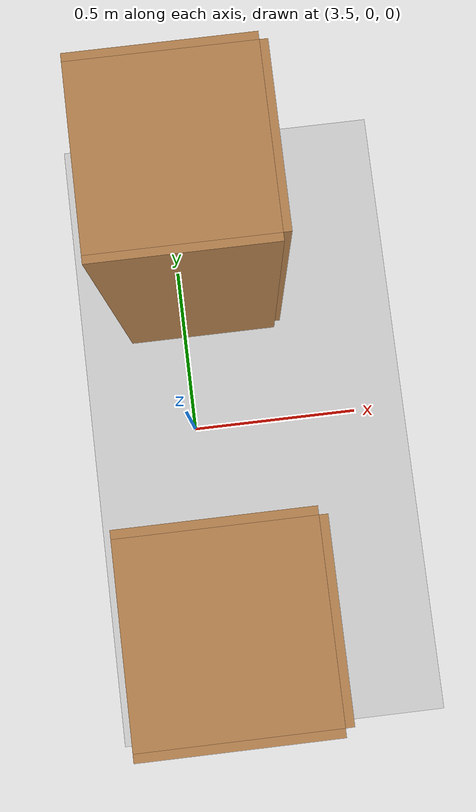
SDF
<?xml version="1.0" ?>
<sdf version="1.4">
  <world name="default">
    <include>
      <uri>model://ground_plane</uri>
    </include>
    <include>
      <uri>model://sun</uri>
    </include>
    <include>
      <uri>model://cabinet</uri>
      <pose>3.55695 0.538432 0 0 0 0</pose>
    </include>
    <include>
      <uri>model://cabinet</uri>
      <pose>3.55695 -0.538432 0 0 0 0</pose>
    </include>

    <!-- Only one ROS interface plugin is required per world, as any other plugin can connect a Gazebo
         topic to a ROS topic (or vise versa). -->
    <plugin name="ros_interface_plugin" filename="librotors_gazebo_ros_interface_plugin.so"/>

    <spherical_coordinates>
      <surface_model>EARTH_WGS84</surface_model>
      <latitude_deg>47.3667</latitude_deg>
      <longitude_deg>8.5500</longitude_deg>
      <elevation>500.0</elevation>
      <heading_deg>0</heading_deg>
    </spherical_coordinates>
    <physics type='ode'>
      <ode>
        <solver>
          <type>quick</type>
          <iters>1000</iters>
          <sor>1.3</sor>
        </solver>
        <constraints>
          <cfm>0</cfm>
          <erp>0.2</erp>
          <contact_max_correcting_vel>100</contact_max_correcting_vel>
          <contact_surface_layer>0.001</contact_surface_layer>
        </constraints>
      </ode>
      <max_step_size>0.01</max_step_size>
      <real_time_factor>1</real_time_factor>
      <real_time_update_rate>100</real_time_update_rate>
      <gravity>0 0 -9.8</gravity>
    </physics>
  </world>
</sdf>

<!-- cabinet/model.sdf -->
<sdf version="1.5">
  <model name="cabinet">
    <static>true</static>
    <link name="cabinet_bottom_plate">
      <inertial>
        <pose>0 0 -1 0 0 0</pose>
        <inertia>
          <ixx>2.050000</ixx>
          <ixy>0</ixy>
          <ixz>0</ixz>
          <iyy>2.050000</iyy>
          <iyz>0</iyz>
          <izz>2.050000</izz>
        </inertia>
        <mass>25.000000</mass>
      </inertial>
      <collision name="cabinet_bottom_plate_geom">
        <pose>0 0 0.010000 0 0 0</pose>
        <geometry>
          <box>
            <size>0.450000 0.450000 0.020000</size>
          </box>
        </geometry>
      </collision>
      <visual name="cabinet_bottom_plate_geom_visual">
        <pose>0 0 0.010000 0 0 0</pose>
        <geometry>
          <box>
            <size>0.450000 0.450000 0.020000</size>
          </box>
        </geometry>
        <material>
          <script>
            <uri>model://media/materials/scripts/gazebo.material</uri>
            <name>Gazebo/Wood</name>
          </script>
        </material>
      </visual>
      <collision name="cabinet_bottom_plate_geom_cabinet_back_plate">
        <pose>0.235000 0 0.510000 0 0 0</pose>
        <geometry>
          <box>
            <size>0.020000 0.450000 1.020000</size>
          </box>
        </geometry>
      </collision>
      <visual name="cabinet_bottom_plate_geom_cabinet_back_plate_visual">
        <pose>0.235000 0 0.510000 0 0 0</pose>
        <geometry>
          <box>
            <size>0.020000 0.450000 1.020000</size>
          </box>
        </geometry>
        <material>
          <script>
            <uri>model://media/materials/scripts/gazebo.material</uri>
            <name>Gazebo/Wood</name>
          </script>
        </material>
      </visual>
      <collision name="cabinet_bottom_plate_geom_cabinet_left_plate">
        <pose>0 0.235000 0.510000 0 0 0</pose>
        <geometry>
          <box>
            <size>0.450000 0.020000 1.020000</size>
          </box>
        </geometry>
      </collision>
      <visual name="cabinet_bottom_plate_geom_cabinet_left_plate_visual">
        <pose>0 0.235000 0.510000 0 0 0</pose>
        <geometry>
          <box>
            <size>0.450000 0.020000 1.020000</size>
          </box>
        </geometry>
        <material>
          <script>
            <uri>model://media/materials/scripts/gazebo.material</uri>
            <name>Gazebo/Wood</name>
          </script>
        </material>
      </visual>
      <collision name="cabinet_bottom_plate_geom_cabinet_middle_plate">
        <pose>0 0 0.510000 0 0 0</pose>
        <geometry>
          <box>
            <size>0.450000 0.450000 0.020000</size>
          </box>
        </geometry>
      </collision>
      <visual name="cabinet_bottom_plate_geom_cabinet_middle_plate_visual">
        <pose>0 0 0.510000 0 0 0</pose>
        <geometry>
          <box>
            <size>0.450000 0.450000 0.020000</size>
          </box>
        </geometry>
        <material>
          <script>
            <uri>model://media/materials/scripts/gazebo.material</uri>
            <name>Gazebo/Wood</name>
          </script>
        </material>
      </visual>
      <collision name="cabinet_bottom_plate_geom_cabinet_right_plate">
        <pose>0 -0.235000 0.510000 0 0 0</pose>
        <geometry>
          <box>
            <size>0.450000 0.020000 1.020000</size>
          </box>
        </geometry>
      </collision>
      <visual name="cabinet_bottom_plate_geom_cabinet_right_plate_visual">
        <pose>0 -0.235000 0.510000 0 0 0</pose>
        <geometry>
          <box>
            <size>0.450000 0.020000 1.020000</size>
          </box>
        </geometry>
        <material>
          <script>
            <uri>model://media/materials/scripts/gazebo.material</uri>
            <name>Gazebo/Wood</name>
          </script>
        </material>
      </visual>
      <collision name="cabinet_bottom_plate_geom_cabinet_top_plate">
        <pose>0 0 1.010000 0 0 0</pose>
        <geometry>
          <box>
            <size>0.450000 0.450000 0.020000</size>
          </box>
        </geometry>
      </collision>
      <visual name="cabinet_bottom_plate_geom_cabinet_top_plate_visual">
        <pose>0 0 1.010000 0 0 0</pose>
        <geometry>
          <box>
            <size>0.450000 0.450000 0.020000</size>
          </box>
        </geometry>
        <material>
          <script>
            <uri>model://media/materials/scripts/gazebo.material</uri>
            <name>Gazebo/Wood</name>
          </script>
        </material>
      </visual>
    </link>
  </model>
</sdf>
